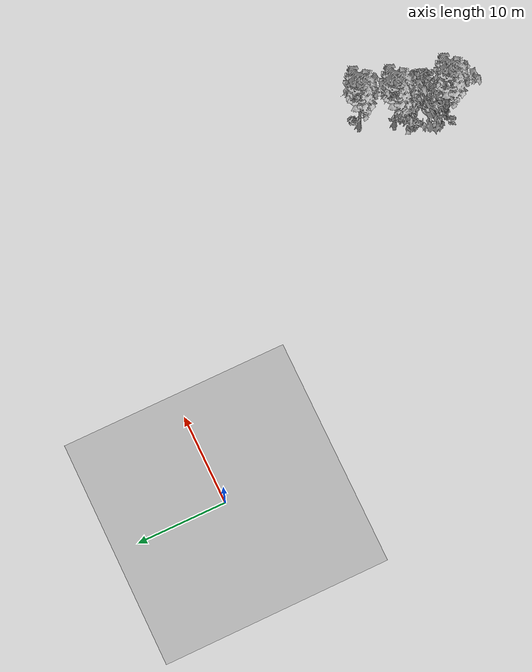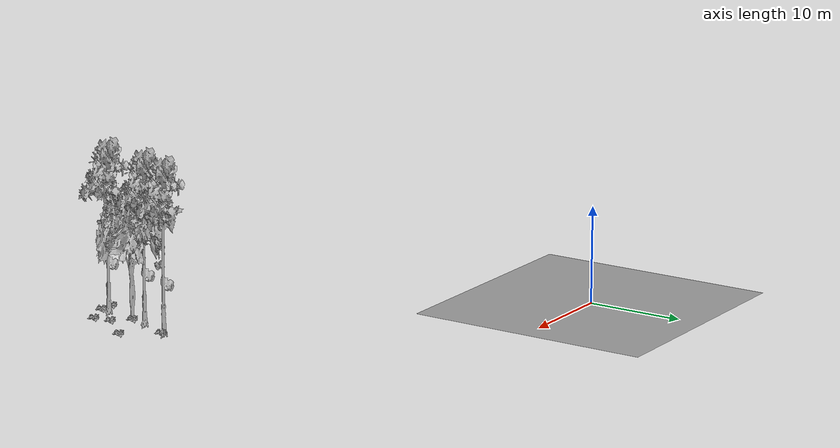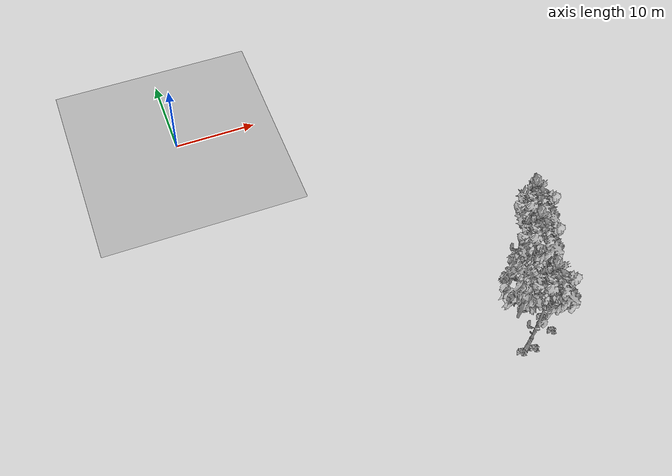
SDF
<sdf version="1.7">
 <world name="default">
  <model name="ground_plane">
   <static>1</static>
   <link name="link">
    <collision name="collision">
     <pose>-50 0 0 0 -0 0</pose>
     <geometry><plane><normal>0 0 1</normal><size>80 80</size></plane></geometry>
     <surface><contact><ode><min_depth>0.01</min_depth><max_vel>0</max_vel></ode></contact></surface>
    </collision>
    <visual name="grass">
     <cast_shadows>0</cast_shadows>
     <geometry>
      <mesh>
       <scale>0.46714285714285714 0.46714285714285714 0.1</scale>
       <uri>file://grass_plane/meshes/grass_plane.dae</uri>
      </mesh>
     </geometry>
    </visual>
   </link>
  </model>
  <model name="Tree 166">
   <static>1</static>
   <pose>30.57492577535878 -30.14835554631364 0 1.57079 -0 0</pose>
   <link name="link">
    <collision name="collision">
     <geometry><mesh><scale>3.5 5 3.5</scale><uri>model://tree_9/meshes/tree_9.obj</uri></mesh></geometry>
    </collision>
    <visual name="visual">
     <geometry><mesh><scale>3.5 5 3.5</scale><uri>model://tree_9/meshes/tree_9.obj</uri></mesh></geometry>
    </visual>
   </link>
  </model>
  <model name="Tree 323">
   <static>1</static>
   <pose>28.594938618596302 -35.5264327162918 0 1.57079 -0 0</pose>
   <link name="link">
    <collision name="collision">
     <geometry><mesh><scale>3.5 5 3.5</scale><uri>model://tree_2/meshes/tree_2.obj</uri></mesh></geometry>
    </collision>
    <visual name="visual">
     <geometry><mesh><scale>3.5 5 3.5</scale><uri>model://tree_2/meshes/tree_2.obj</uri></mesh></geometry>
    </visual>
   </link>
  </model>
  <model name="Tree 502">
   <static>1</static>
   <pose>29.129502132862683 -33.633921719660066 0 1.57079 -0 0</pose>
   <link name="link">
    <collision name="collision">
     <geometry><mesh><scale>3.5 5 3.5</scale><uri>model://tree_9/meshes/tree_9.obj</uri></mesh></geometry>
    </collision>
    <visual name="visual">
     <geometry><mesh><scale>3.5 5 3.5</scale><uri>model://tree_9/meshes/tree_9.obj</uri></mesh></geometry>
    </visual>
   </link>
  </model>
  <model name="Tree 619">
   <static>1</static>
   <pose>27.821102637908183 -39.15736128781356 0 1.57079 -0 0</pose>
   <link name="link">
    <collision name="collision">
     <geometry><mesh><scale>3.5 5 3.5</scale><uri>model://tree_9/meshes/tree_9.obj</uri></mesh></geometry>
    </collision>
    <visual name="visual">
     <geometry><mesh><scale>3.5 5 3.5</scale><uri>model://tree_9/meshes/tree_9.obj</uri></mesh></geometry>
    </visual>
   </link>
  </model>
  <model name="Bush 9">
   <static>1</static>
   <pose>29.513773504405293 -34.86201903082295 0 1.57079 -0 0</pose>
   <link name="link">
    <collision name="collision">
     <geometry><mesh><scale>2 2 2</scale><uri>model://bush_2/meshes/bush_2.obj</uri></mesh></geometry>
     <surface><contact><collide_without_contact>false</collide_without_contact></contact></surface>
    </collision>
    <visual name="visual">
     <geometry><mesh><scale>2 2 2</scale><uri>model://bush_2/meshes/bush_2.obj</uri></mesh></geometry>
    </visual>
   </link>
  </model>
  <model name="Bush 20">
   <static>1</static>
   <pose>31.000915159295644 -36.44043883566907 0 1.57079 -0 0</pose>
   <link name="link">
    <collision name="collision">
     <geometry><mesh><scale>2 2 2</scale><uri>model://bush_2/meshes/bush_2.obj</uri></mesh></geometry>
     <surface><contact><collide_without_contact>false</collide_without_contact></contact></surface>
    </collision>
    <visual name="visual">
     <geometry><mesh><scale>2 2 2</scale><uri>model://bush_2/meshes/bush_2.obj</uri></mesh></geometry>
    </visual>
   </link>
  </model>
  <model name="Bush 115">
   <static>1</static>
   <pose>31.47924295390054 -29.8332543319804 0 1.57079 -0 0</pose>
   <link name="link">
    <collision name="collision">
     <geometry><mesh><scale>2 2 2</scale><uri>model://bush_2/meshes/bush_2.obj</uri></mesh></geometry>
     <surface><contact><collide_without_contact>false</collide_without_contact></contact></surface>
    </collision>
    <visual name="visual">
     <geometry><mesh><scale>2 2 2</scale><uri>model://bush_2/meshes/bush_2.obj</uri></mesh></geometry>
    </visual>
   </link>
  </model>
  <model name="Bush 204">
   <static>1</static>
   <pose>33.896633507143704 -33.106543862034385 0 1.57079 -0 0</pose>
   <link name="link">
    <collision name="collision">
     <geometry><mesh><scale>2 2 2</scale><uri>model://bush_2/meshes/bush_2.obj</uri></mesh></geometry>
     <surface><contact><collide_without_contact>false</collide_without_contact></contact></surface>
    </collision>
    <visual name="visual">
     <geometry><mesh><scale>2 2 2</scale><uri>model://bush_2/meshes/bush_2.obj</uri></mesh></geometry>
    </visual>
   </link>
  </model>
  <model name="Bush 577">
   <static>1</static>
   <pose>26.977840770047848 -39.47980011949575 0 1.57079 -0 0</pose>
   <link name="link">
    <collision name="collision">
     <geometry><mesh><scale>2 2 2</scale><uri>model://bush_2/meshes/bush_2.obj</uri></mesh></geometry>
     <surface><contact><collide_without_contact>false</collide_without_contact></contact></surface>
    </collision>
    <visual name="visual">
     <geometry><mesh><scale>2 2 2</scale><uri>model://bush_2/meshes/bush_2.obj</uri></mesh></geometry>
    </visual>
   </link>
  </model>
  <model name="Bush 579">
   <static>1</static>
   <pose>31.26821378327743 -38.303593648113264 0 1.57079 -0 0</pose>
   <link name="link">
    <collision name="collision">
     <geometry><mesh><scale>2 2 2</scale><uri>model://bush_2/meshes/bush_2.obj</uri></mesh></geometry>
     <surface><contact><collide_without_contact>false</collide_without_contact></contact></surface>
    </collision>
    <visual name="visual">
     <geometry><mesh><scale>2 2 2</scale><uri>model://bush_2/meshes/bush_2.obj</uri></mesh></geometry>
    </visual>
   </link>
  </model>
  <model name="Bush 594">
   <static>1</static>
   <pose>28.498230083081452 -39.55285835799475 0 1.57079 -0 0</pose>
   <link name="link">
    <collision name="collision">
     <geometry><mesh><scale>2 2 2</scale><uri>model://bush_2/meshes/bush_2.obj</uri></mesh></geometry>
     <surface><contact><collide_without_contact>false</collide_without_contact></contact></surface>
    </collision>
    <visual name="visual">
     <geometry><mesh><scale>2 2 2</scale><uri>model://bush_2/meshes/bush_2.obj</uri></mesh></geometry>
    </visual>
   </link>
  </model>
 </world>
</sdf>
